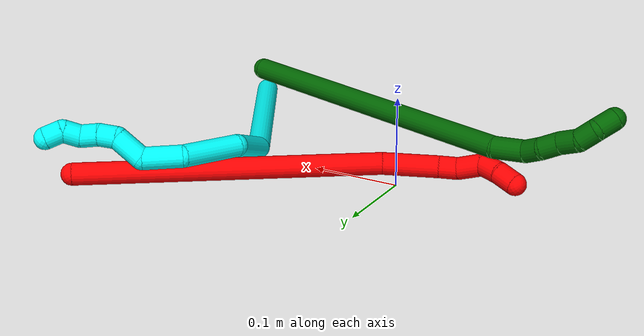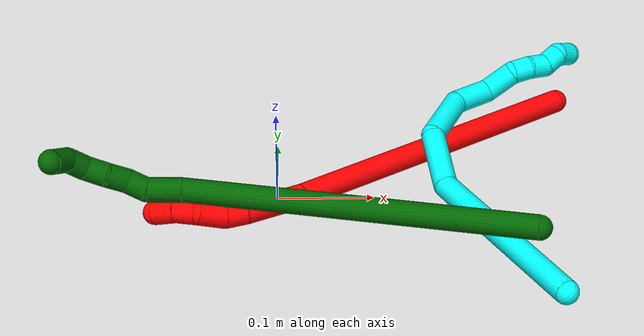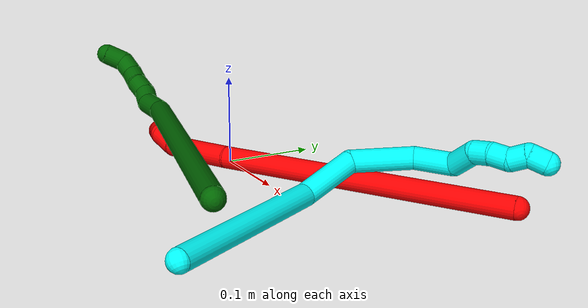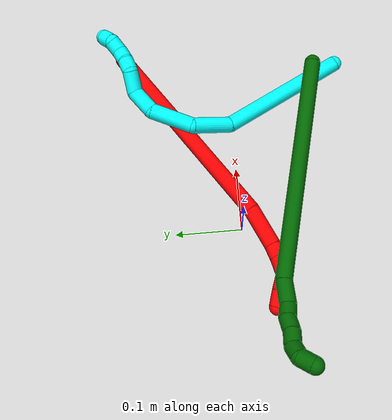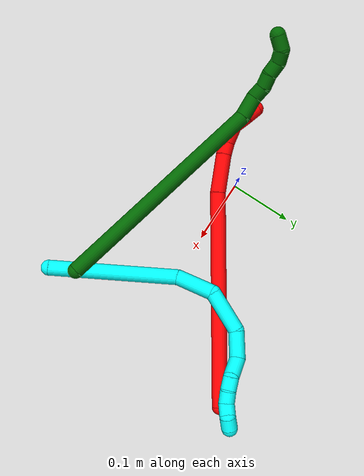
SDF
<sdf version="1.7">
 <world name="default">
  <model name="2">
   <static>0</static>
   <link name="2">
    <collision name="collision-cylinder-e_1_1_4">
     <pose>-0.139965 0.012555 -0.095579 -3.01098 -0.967665 2.89397</pose>
     <geometry><cylinder><radius>0.0125</radius><length>0.339901</length></cylinder></geometry>
     <surface>
      <friction><ode><mu>1.16</mu><mu2>1.16</mu2><slip1>0</slip1><slip2>0</slip2></ode></friction>
      <contact><ode><kp>1e+06</kp><kd>1</kd><max_vel>0</max_vel><min_depth>0.001</min_depth></ode></contact>
     </surface>
    </collision>
    <visual name="visual-cylinder-e_1_1_4">
     <pose>-0.139965 0.012555 -0.095579 -3.01098 -0.967665 2.89397</pose>
     <geometry><cylinder><radius>0.0125</radius><length>0.339901</length></cylinder></geometry>
     <material><ambient>1 0 0 1</ambient></material>
    </visual>
    <collision name="collision-cylinder-e_2_4_5">
     <pose>-0.303663 0.02364 -0.211666 3.07006 -0.856893 -2.98522</pose>
     <geometry><cylinder><radius>0.0125</radius><length>0.062803</length></cylinder></geometry>
     <surface>
      <friction><ode><mu>1.16</mu><mu2>1.16</mu2><slip1>0</slip1><slip2>0</slip2></ode></friction>
      <contact><ode><kp>1e+06</kp><kd>1</kd><max_vel>0</max_vel><min_depth>0.001</min_depth></ode></contact>
     </surface>
    </collision>
    <visual name="visual-cylinder-e_2_4_5">
     <pose>-0.303663 0.02364 -0.211666 3.07006 -0.856893 -2.98522</pose>
     <geometry><cylinder><radius>0.0125</radius><length>0.062803</length></cylinder></geometry>
     <material><ambient>1 0 0 1</ambient></material>
    </visual>
    <collision name="collision-cylinder-e_3_5_6">
     <pose>-0.334648 0.021142 -0.239786 3.00722 -0.756642 -2.80619</pose>
     <geometry><cylinder><radius>0.0125</radius><length>0.021126</length></cylinder></geometry>
     <surface>
      <friction><ode><mu>1.16</mu><mu2>1.16</mu2><slip1>0</slip1><slip2>0</slip2></ode></friction>
      <contact><ode><kp>1e+06</kp><kd>1</kd><max_vel>0</max_vel><min_depth>0.001</min_depth></ode></contact>
     </surface>
    </collision>
    <visual name="visual-cylinder-e_3_5_6">
     <pose>-0.334648 0.021142 -0.239786 3.00722 -0.756642 -2.80619</pose>
     <geometry><cylinder><radius>0.0125</radius><length>0.021126</length></cylinder></geometry>
     <material><ambient>1 0 0 1</ambient></material>
    </visual>
    <collision name="collision-cylinder-e_4_6_7">
     <pose>-0.348607 0.021331 -0.260167 -3.04649 -0.481847 2.75897</pose>
     <geometry><cylinder><radius>0.0125</radius><length>0.02895</length></cylinder></geometry>
     <surface>
      <friction><ode><mu>1.16</mu><mu2>1.16</mu2><slip1>0</slip1><slip2>0</slip2></ode></friction>
      <contact><ode><kp>1e+06</kp><kd>1</kd><max_vel>0</max_vel><min_depth>0.001</min_depth></ode></contact>
     </surface>
    </collision>
    <visual name="visual-cylinder-e_4_6_7">
     <pose>-0.348607 0.021331 -0.260167 -3.04649 -0.481847 2.75897</pose>
     <geometry><cylinder><radius>0.0125</radius><length>0.02895</length></cylinder></geometry>
     <material><ambient>1 0 0 1</ambient></material>
    </visual>
    <collision name="collision-cylinder-e_5_7_8">
     <pose>-0.357573 0.01686 -0.283011 2.62758 -0.192745 -0.704941</pose>
     <geometry><cylinder><radius>0.0125</radius><length>0.023578</length></cylinder></geometry>
     <surface>
      <friction><ode><mu>1.16</mu><mu2>1.16</mu2><slip1>0</slip1><slip2>0</slip2></ode></friction>
      <contact><ode><kp>1e+06</kp><kd>1</kd><max_vel>0</max_vel><min_depth>0.001</min_depth></ode></contact>
     </surface>
    </collision>
    <visual name="visual-cylinder-e_5_7_8">
     <pose>-0.357573 0.01686 -0.283011 2.62758 -0.192745 -0.704941</pose>
     <geometry><cylinder><radius>0.0125</radius><length>0.023578</length></cylinder></geometry>
     <material><ambient>1 0 0 1</ambient></material>
    </visual>
    <collision name="collision-cylinder-e_6_8_2">
     <pose>-0.363283 0.004103 -0.301912 2.46633 -0.296292 -0.803907</pose>
     <geometry><cylinder><radius>0.0125</radius><length>0.023644</length></cylinder></geometry>
     <surface>
      <friction><ode><mu>1.16</mu><mu2>1.16</mu2><slip1>0</slip1><slip2>0</slip2></ode></friction>
      <contact><ode><kp>1e+06</kp><kd>1</kd><max_vel>0</max_vel><min_depth>0.001</min_depth></ode></contact>
     </surface>
    </collision>
    <visual name="visual-cylinder-e_6_8_2">
     <pose>-0.363283 0.004103 -0.301912 2.46633 -0.296292 -0.803907</pose>
     <geometry><cylinder><radius>0.0125</radius><length>0.023644</length></cylinder></geometry>
     <material><ambient>1 0 0 1</ambient></material>
    </visual>
    <collision name="collision-sphere-2">
     <pose>-0.366735 -0.002965 -0.310737 0 -0 0</pose>
     <geometry><sphere><radius>0.0125</radius></sphere></geometry>
     <surface>
      <friction><ode><mu>1.16</mu><mu2>1.16</mu2><slip1>0</slip1><slip2>0</slip2></ode></friction>
      <contact><ode><kp>1e+06</kp><kd>1</kd><max_vel>0</max_vel><min_depth>0.001</min_depth></ode></contact>
     </surface>
    </collision>
    <visual name="visual-sphere-2">
     <pose>-0.366735 -0.002965 -0.310737 0 -0 0</pose>
     <geometry><sphere><radius>0.0125</radius></sphere></geometry>
     <material><ambient>1 0 0 1</ambient></material>
    </visual>
    <collision name="collision-sphere-4">
     <pose>-0.27993 0.02511 -0.191158 0 -0 0</pose>
     <geometry><sphere><radius>0.0125</radius></sphere></geometry>
     <surface>
      <friction><ode><mu>1.16</mu><mu2>1.16</mu2><slip1>0</slip1><slip2>0</slip2></ode></friction>
      <contact><ode><kp>1e+06</kp><kd>1</kd><max_vel>0</max_vel><min_depth>0.001</min_depth></ode></contact>
     </surface>
    </collision>
    <visual name="visual-sphere-4">
     <pose>-0.27993 0.02511 -0.191158 0 -0 0</pose>
     <geometry><sphere><radius>0.0125</radius></sphere></geometry>
     <material><ambient>1 0 0 1</ambient></material>
    </visual>
    <collision name="collision-sphere-1">
     <geometry><sphere><radius>0.0125</radius></sphere></geometry>
     <surface>
      <friction><ode><mu>1.16</mu><mu2>1.16</mu2><slip1>0</slip1><slip2>0</slip2></ode></friction>
      <contact><ode><kp>1e+06</kp><kd>1</kd><max_vel>0</max_vel><min_depth>0.001</min_depth></ode></contact>
     </surface>
    </collision>
    <visual name="visual-sphere-1">
     <geometry><sphere><radius>0.0125</radius></sphere></geometry>
     <material><ambient>1 0 0 1</ambient></material>
    </visual>
    <collision name="collision-sphere-8">
     <pose>-0.359831 0.011171 -0.293086 0 -0 0</pose>
     <geometry><sphere><radius>0.0125</radius></sphere></geometry>
     <surface>
      <friction><ode><mu>1.16</mu><mu2>1.16</mu2><slip1>0</slip1><slip2>0</slip2></ode></friction>
      <contact><ode><kp>1e+06</kp><kd>1</kd><max_vel>0</max_vel><min_depth>0.001</min_depth></ode></contact>
     </surface>
    </collision>
    <visual name="visual-sphere-8">
     <pose>-0.359831 0.011171 -0.293086 0 -0 0</pose>
     <geometry><sphere><radius>0.0125</radius></sphere></geometry>
     <material><ambient>1 0 0 1</ambient></material>
    </visual>
    <collision name="collision-sphere-5">
     <pose>-0.327397 0.022171 -0.232175 0 -0 0</pose>
     <geometry><sphere><radius>0.0125</radius></sphere></geometry>
     <surface>
      <friction><ode><mu>1.16</mu><mu2>1.16</mu2><slip1>0</slip1><slip2>0</slip2></ode></friction>
      <contact><ode><kp>1e+06</kp><kd>1</kd><max_vel>0</max_vel><min_depth>0.001</min_depth></ode></contact>
     </surface>
    </collision>
    <visual name="visual-sphere-5">
     <pose>-0.327397 0.022171 -0.232175 0 -0 0</pose>
     <geometry><sphere><radius>0.0125</radius></sphere></geometry>
     <material><ambient>1 0 0 1</ambient></material>
    </visual>
    <collision name="collision-sphere-6">
     <pose>-0.341899 0.020113 -0.247398 0 -0 0</pose>
     <geometry><sphere><radius>0.0125</radius></sphere></geometry>
     <surface>
      <friction><ode><mu>1.16</mu><mu2>1.16</mu2><slip1>0</slip1><slip2>0</slip2></ode></friction>
      <contact><ode><kp>1e+06</kp><kd>1</kd><max_vel>0</max_vel><min_depth>0.001</min_depth></ode></contact>
     </surface>
    </collision>
    <visual name="visual-sphere-6">
     <pose>-0.341899 0.020113 -0.247398 0 -0 0</pose>
     <geometry><sphere><radius>0.0125</radius></sphere></geometry>
     <material><ambient>1 0 0 1</ambient></material>
    </visual>
    <collision name="collision-sphere-7">
     <pose>-0.355315 0.022549 -0.272936 0 -0 0</pose>
     <geometry><sphere><radius>0.0125</radius></sphere></geometry>
     <surface>
      <friction><ode><mu>1.16</mu><mu2>1.16</mu2><slip1>0</slip1><slip2>0</slip2></ode></friction>
      <contact><ode><kp>1e+06</kp><kd>1</kd><max_vel>0</max_vel><min_depth>0.001</min_depth></ode></contact>
     </surface>
    </collision>
    <visual name="visual-sphere-7">
     <pose>-0.355315 0.022549 -0.272936 0 -0 0</pose>
     <geometry><sphere><radius>0.0125</radius></sphere></geometry>
     <material><ambient>1 0 0 1</ambient></material>
    </visual>
    <inertial>
     <pose>-0.201654 0.014621 -0.144378 0 -0 0</pose>
     <mass>0.5</mass>
     <inertia>
      <ixx>-0.001399</ixx>
      <ixy>0</ixy>
      <ixz>0</ixz>
      <iyy>0.003722</iyy>
      <iyz>0</iyz>
      <izz>0.002463</izz>
     </inertia>
    </inertial>
   </link>
   <pose>0.309583 0.170618 0.0115 2.0459 -0.362821 1.06852</pose>
  </model>
  <model name="3">
   <static>0</static>
   <link name="3">
    <collision name="collision-cylinder-e_1_1_4">
     <pose>0.016314 0.098937 -0.026025 -1.82802 0.158133 -0.204818</pose>
     <geometry><cylinder><radius>0.0125</radius><length>0.20719</length></cylinder></geometry>
     <surface>
      <friction><ode><mu>1.16</mu><mu2>1.16</mu2><slip1>0</slip1><slip2>0</slip2></ode></friction>
      <contact><ode><kp>1e+06</kp><kd>1</kd><max_vel>0</max_vel><min_depth>0.001</min_depth></ode></contact>
     </surface>
    </collision>
    <visual name="visual-cylinder-e_1_1_4">
     <pose>0.016314 0.098937 -0.026025 -1.82802 0.158133 -0.204818</pose>
     <geometry><cylinder><radius>0.0125</radius><length>0.20719</length></cylinder></geometry>
     <material><ambient>0.003922 1 0.996078 1</ambient></material>
    </visual>
    <collision name="collision-cylinder-e_2_4_5">
     <pose>0.021778 0.22656 -0.063094 -1.93828 -0.339312 0.489026</pose>
     <geometry><cylinder><radius>0.0125</radius><length>0.065194</length></cylinder></geometry>
     <surface>
      <friction><ode><mu>1.16</mu><mu2>1.16</mu2><slip1>0</slip1><slip2>0</slip2></ode></friction>
      <contact><ode><kp>1e+06</kp><kd>1</kd><max_vel>0</max_vel><min_depth>0.001</min_depth></ode></contact>
     </surface>
    </collision>
    <visual name="visual-cylinder-e_2_4_5">
     <pose>0.021778 0.22656 -0.063094 -1.93828 -0.339312 0.489026</pose>
     <geometry><cylinder><radius>0.0125</radius><length>0.065194</length></cylinder></geometry>
     <material><ambient>0.003922 1 0.996078 1</ambient></material>
    </visual>
    <collision name="collision-cylinder-e_3_5_6">
     <pose>-0.008244 0.281788 -0.064609 -1.22616 -0.597076 0.426411</pose>
     <geometry><cylinder><radius>0.0125</radius><length>0.068202</length></cylinder></geometry>
     <surface>
      <friction><ode><mu>1.16</mu><mu2>1.16</mu2><slip1>0</slip1><slip2>0</slip2></ode></friction>
      <contact><ode><kp>1e+06</kp><kd>1</kd><max_vel>0</max_vel><min_depth>0.001</min_depth></ode></contact>
     </surface>
    </collision>
    <visual name="visual-cylinder-e_3_5_6">
     <pose>-0.008244 0.281788 -0.064609 -1.22616 -0.597076 0.426411</pose>
     <geometry><cylinder><radius>0.0125</radius><length>0.068202</length></cylinder></geometry>
     <material><ambient>0.003922 1 0.996078 1</ambient></material>
    </visual>
    <collision name="collision-cylinder-e_4_6_7">
     <pose>-0.043726 0.31682 -0.042912 -0.609097 -0.832596 0.276184</pose>
     <geometry><cylinder><radius>0.0125</radius><length>0.044098</length></cylinder></geometry>
     <surface>
      <friction><ode><mu>1.16</mu><mu2>1.16</mu2><slip1>0</slip1><slip2>0</slip2></ode></friction>
      <contact><ode><kp>1e+06</kp><kd>1</kd><max_vel>0</max_vel><min_depth>0.001</min_depth></ode></contact>
     </surface>
    </collision>
    <visual name="visual-cylinder-e_4_6_7">
     <pose>-0.043726 0.31682 -0.042912 -0.609097 -0.832596 0.276184</pose>
     <geometry><cylinder><radius>0.0125</radius><length>0.044098</length></cylinder></geometry>
     <material><ambient>0.003922 1 0.996078 1</ambient></material>
    </visual>
    <collision name="collision-cylinder-e_5_7_8">
     <pose>-0.077155 0.323424 -0.030021 1.20542 -1.45346 -1.09806</pose>
     <geometry><cylinder><radius>0.0125</radius><length>0.034477</length></cylinder></geometry>
     <surface>
      <friction><ode><mu>1.16</mu><mu2>1.16</mu2><slip1>0</slip1><slip2>0</slip2></ode></friction>
      <contact><ode><kp>1e+06</kp><kd>1</kd><max_vel>0</max_vel><min_depth>0.001</min_depth></ode></contact>
     </surface>
    </collision>
    <visual name="visual-cylinder-e_5_7_8">
     <pose>-0.077155 0.323424 -0.030021 1.20542 -1.45346 -1.09806</pose>
     <geometry><cylinder><radius>0.0125</radius><length>0.034477</length></cylinder></geometry>
     <material><ambient>0.003922 1 0.996078 1</ambient></material>
    </visual>
    <collision name="collision-cylinder-e_6_8_9">
     <pose>-0.103013 0.322666 -0.024137 -0.214713 -1.02688 0.121391</pose>
     <geometry><cylinder><radius>0.0125</radius><length>0.020424</length></cylinder></geometry>
     <surface>
      <friction><ode><mu>1.16</mu><mu2>1.16</mu2><slip1>0</slip1><slip2>0</slip2></ode></friction>
      <contact><ode><kp>1e+06</kp><kd>1</kd><max_vel>0</max_vel><min_depth>0.001</min_depth></ode></contact>
     </surface>
    </collision>
    <visual name="visual-cylinder-e_6_8_9">
     <pose>-0.103013 0.322666 -0.024137 -0.214713 -1.02688 0.121391</pose>
     <geometry><cylinder><radius>0.0125</radius><length>0.020424</length></cylinder></geometry>
     <material><ambient>0.003922 1 0.996078 1</ambient></material>
    </visual>
    <collision name="collision-cylinder-e_7_9_10">
     <pose>-0.118953 0.326115 -0.012167 -0.328924 -0.786021 0.137391</pose>
     <geometry><cylinder><radius>0.0125</radius><length>0.020357</length></cylinder></geometry>
     <surface>
      <friction><ode><mu>1.16</mu><mu2>1.16</mu2><slip1>0</slip1><slip2>0</slip2></ode></friction>
      <contact><ode><kp>1e+06</kp><kd>1</kd><max_vel>0</max_vel><min_depth>0.001</min_depth></ode></contact>
     </surface>
    </collision>
    <visual name="visual-cylinder-e_7_9_10">
     <pose>-0.118953 0.326115 -0.012167 -0.328924 -0.786021 0.137391</pose>
     <geometry><cylinder><radius>0.0125</radius><length>0.020357</length></cylinder></geometry>
     <material><ambient>0.003922 1 0.996078 1</ambient></material>
    </visual>
    <collision name="collision-cylinder-e_8_10_11">
     <pose>-0.135287 0.331978 -0.003295 -1.04292 -1.14904 0.71212</pose>
     <geometry><cylinder><radius>0.0125</radius><length>0.020018</length></cylinder></geometry>
     <surface>
      <friction><ode><mu>1.16</mu><mu2>1.16</mu2><slip1>0</slip1><slip2>0</slip2></ode></friction>
      <contact><ode><kp>1e+06</kp><kd>1</kd><max_vel>0</max_vel><min_depth>0.001</min_depth></ode></contact>
     </surface>
    </collision>
    <visual name="visual-cylinder-e_8_10_11">
     <pose>-0.135287 0.331978 -0.003295 -1.04292 -1.14904 0.71212</pose>
     <geometry><cylinder><radius>0.0125</radius><length>0.020018</length></cylinder></geometry>
     <material><ambient>0.003922 1 0.996078 1</ambient></material>
    </visual>
    <collision name="collision-cylinder-e_9_11_2">
     <pose>-0.149073 0.340578 0.006058 -0.60679 -0.483068 0.153936</pose>
     <geometry><cylinder><radius>0.0125</radius><length>0.020041</length></cylinder></geometry>
     <surface>
      <friction><ode><mu>1.16</mu><mu2>1.16</mu2><slip1>0</slip1><slip2>0</slip2></ode></friction>
      <contact><ode><kp>1e+06</kp><kd>1</kd><max_vel>0</max_vel><min_depth>0.001</min_depth></ode></contact>
     </surface>
    </collision>
    <visual name="visual-cylinder-e_9_11_2">
     <pose>-0.149073 0.340578 0.006058 -0.60679 -0.483068 0.153936</pose>
     <geometry><cylinder><radius>0.0125</radius><length>0.020041</length></cylinder></geometry>
     <material><ambient>0.003922 1 0.996078 1</ambient></material>
    </visual>
    <collision name="collision-sphere-2">
     <pose>-0.153728 0.345638 0.013348 0 -0 0</pose>
     <geometry><sphere><radius>0.0125</radius></sphere></geometry>
     <surface>
      <friction><ode><mu>1.16</mu><mu2>1.16</mu2><slip1>0</slip1><slip2>0</slip2></ode></friction>
      <contact><ode><kp>1e+06</kp><kd>1</kd><max_vel>0</max_vel><min_depth>0.001</min_depth></ode></contact>
     </surface>
    </collision>
    <visual name="visual-sphere-2">
     <pose>-0.153728 0.345638 0.013348 0 -0 0</pose>
     <geometry><sphere><radius>0.0125</radius></sphere></geometry>
     <material><ambient>0.003922 1 0.996078 1</ambient></material>
    </visual>
    <collision name="collision-sphere-11">
     <pose>-0.144419 0.335518 -0.001232 0 -0 0</pose>
     <geometry><sphere><radius>0.0125</radius></sphere></geometry>
     <surface>
      <friction><ode><mu>1.16</mu><mu2>1.16</mu2><slip1>0</slip1><slip2>0</slip2></ode></friction>
      <contact><ode><kp>1e+06</kp><kd>1</kd><max_vel>0</max_vel><min_depth>0.001</min_depth></ode></contact>
     </surface>
    </collision>
    <visual name="visual-sphere-11">
     <pose>-0.144419 0.335518 -0.001232 0 -0 0</pose>
     <geometry><sphere><radius>0.0125</radius></sphere></geometry>
     <material><ambient>0.003922 1 0.996078 1</ambient></material>
    </visual>
    <collision name="collision-sphere-10">
     <pose>-0.126155 0.328438 -0.005359 0 -0 0</pose>
     <geometry><sphere><radius>0.0125</radius></sphere></geometry>
     <surface>
      <friction><ode><mu>1.16</mu><mu2>1.16</mu2><slip1>0</slip1><slip2>0</slip2></ode></friction>
      <contact><ode><kp>1e+06</kp><kd>1</kd><max_vel>0</max_vel><min_depth>0.001</min_depth></ode></contact>
     </surface>
    </collision>
    <visual name="visual-sphere-10">
     <pose>-0.126155 0.328438 -0.005359 0 -0 0</pose>
     <geometry><sphere><radius>0.0125</radius></sphere></geometry>
     <material><ambient>0.003922 1 0.996078 1</ambient></material>
    </visual>
    <collision name="collision-sphere-9">
     <pose>-0.111751 0.323792 -0.018974 0 -0 0</pose>
     <geometry><sphere><radius>0.0125</radius></sphere></geometry>
     <surface>
      <friction><ode><mu>1.16</mu><mu2>1.16</mu2><slip1>0</slip1><slip2>0</slip2></ode></friction>
      <contact><ode><kp>1e+06</kp><kd>1</kd><max_vel>0</max_vel><min_depth>0.001</min_depth></ode></contact>
     </surface>
    </collision>
    <visual name="visual-sphere-9">
     <pose>-0.111751 0.323792 -0.018974 0 -0 0</pose>
     <geometry><sphere><radius>0.0125</radius></sphere></geometry>
     <material><ambient>0.003922 1 0.996078 1</ambient></material>
    </visual>
    <collision name="collision-sphere-4">
     <pose>0.032627 0.197873 -0.05205 0 -0 0</pose>
     <geometry><sphere><radius>0.0125</radius></sphere></geometry>
     <surface>
      <friction><ode><mu>1.16</mu><mu2>1.16</mu2><slip1>0</slip1><slip2>0</slip2></ode></friction>
      <contact><ode><kp>1e+06</kp><kd>1</kd><max_vel>0</max_vel><min_depth>0.001</min_depth></ode></contact>
     </surface>
    </collision>
    <visual name="visual-sphere-4">
     <pose>0.032627 0.197873 -0.05205 0 -0 0</pose>
     <geometry><sphere><radius>0.0125</radius></sphere></geometry>
     <material><ambient>0.003922 1 0.996078 1</ambient></material>
    </visual>
    <collision name="collision-sphere-1">
     <geometry><sphere><radius>0.0125</radius></sphere></geometry>
     <surface>
      <friction><ode><mu>1.16</mu><mu2>1.16</mu2><slip1>0</slip1><slip2>0</slip2></ode></friction>
      <contact><ode><kp>1e+06</kp><kd>1</kd><max_vel>0</max_vel><min_depth>0.001</min_depth></ode></contact>
     </surface>
    </collision>
    <visual name="visual-sphere-1">
     <geometry><sphere><radius>0.0125</radius></sphere></geometry>
     <material><ambient>0.003922 1 0.996078 1</ambient></material>
    </visual>
    <collision name="collision-sphere-8">
     <pose>-0.094275 0.32154 -0.0293 0 -0 0</pose>
     <geometry><sphere><radius>0.0125</radius></sphere></geometry>
     <surface>
      <friction><ode><mu>1.16</mu><mu2>1.16</mu2><slip1>0</slip1><slip2>0</slip2></ode></friction>
      <contact><ode><kp>1e+06</kp><kd>1</kd><max_vel>0</max_vel><min_depth>0.001</min_depth></ode></contact>
     </surface>
    </collision>
    <visual name="visual-sphere-8">
     <pose>-0.094275 0.32154 -0.0293 0 -0 0</pose>
     <geometry><sphere><radius>0.0125</radius></sphere></geometry>
     <material><ambient>0.003922 1 0.996078 1</ambient></material>
    </visual>
    <collision name="collision-sphere-5">
     <pose>0.010928 0.255246 -0.074137 0 -0 0</pose>
     <geometry><sphere><radius>0.0125</radius></sphere></geometry>
     <surface>
      <friction><ode><mu>1.16</mu><mu2>1.16</mu2><slip1>0</slip1><slip2>0</slip2></ode></friction>
      <contact><ode><kp>1e+06</kp><kd>1</kd><max_vel>0</max_vel><min_depth>0.001</min_depth></ode></contact>
     </surface>
    </collision>
    <visual name="visual-sphere-5">
     <pose>0.010928 0.255246 -0.074137 0 -0 0</pose>
     <geometry><sphere><radius>0.0125</radius></sphere></geometry>
     <material><ambient>0.003922 1 0.996078 1</ambient></material>
    </visual>
    <collision name="collision-sphere-6">
     <pose>-0.027417 0.308331 -0.055081 0 -0 0</pose>
     <geometry><sphere><radius>0.0125</radius></sphere></geometry>
     <surface>
      <friction><ode><mu>1.16</mu><mu2>1.16</mu2><slip1>0</slip1><slip2>0</slip2></ode></friction>
      <contact><ode><kp>1e+06</kp><kd>1</kd><max_vel>0</max_vel><min_depth>0.001</min_depth></ode></contact>
     </surface>
    </collision>
    <visual name="visual-sphere-6">
     <pose>-0.027417 0.308331 -0.055081 0 -0 0</pose>
     <geometry><sphere><radius>0.0125</radius></sphere></geometry>
     <material><ambient>0.003922 1 0.996078 1</ambient></material>
    </visual>
    <collision name="collision-sphere-7">
     <pose>-0.060035 0.325309 -0.030742 0 -0 0</pose>
     <geometry><sphere><radius>0.0125</radius></sphere></geometry>
     <surface>
      <friction><ode><mu>1.16</mu><mu2>1.16</mu2><slip1>0</slip1><slip2>0</slip2></ode></friction>
      <contact><ode><kp>1e+06</kp><kd>1</kd><max_vel>0</max_vel><min_depth>0.001</min_depth></ode></contact>
     </surface>
    </collision>
    <visual name="visual-sphere-7">
     <pose>-0.060035 0.325309 -0.030742 0 -0 0</pose>
     <geometry><sphere><radius>0.0125</radius></sphere></geometry>
     <material><ambient>0.003922 1 0.996078 1</ambient></material>
    </visual>
    <inertial>
     <pose>-0.021144 0.212618 -0.035049 0 -0 0</pose>
     <mass>0.5</mass>
     <inertia>
      <ixx>0.000638</ixx>
      <ixy>0</ixy>
      <ixz>0</ixz>
      <iyy>-0.000234</iyy>
      <iyz>0</iyz>
      <izz>-0.000842</izz>
     </inertia>
    </inertial>
   </link>
   <pose>0.274023 -0.178251 0.012158 -3.00633 0.656345 -2.83799</pose>
  </model>
  <model name="6">
   <static>0</static>
   <link name="6">
    <collision name="collision-cylinder-e_1_1_4">
     <pose>0.001748 0.002344 -0.177163 -3.12836 0.009866 -1.28148</pose>
     <geometry><cylinder><radius>0.0125</radius><length>0.354374</length></cylinder></geometry>
     <surface>
      <friction><ode><mu>1.16</mu><mu2>1.16</mu2><slip1>0</slip1><slip2>0</slip2></ode></friction>
      <contact><ode><kp>1e+06</kp><kd>1</kd><max_vel>0</max_vel><min_depth>0.001</min_depth></ode></contact>
     </surface>
    </collision>
    <visual name="visual-cylinder-e_1_1_4">
     <pose>0.001748 0.002344 -0.177163 -3.12836 0.009866 -1.28148</pose>
     <geometry><cylinder><radius>0.0125</radius><length>0.354374</length></cylinder></geometry>
     <material><ambient>0 0.392157 0.003922 1</ambient></material>
    </visual>
    <collision name="collision-cylinder-e_2_4_5">
     <pose>0.004906 0.010014 -0.371443 -2.83995 0.078464 -0.505515</pose>
     <geometry><cylinder><radius>0.0125</radius><length>0.035965</length></cylinder></geometry>
     <surface>
      <friction><ode><mu>1.16</mu><mu2>1.16</mu2><slip1>0</slip1><slip2>0</slip2></ode></friction>
      <contact><ode><kp>1e+06</kp><kd>1</kd><max_vel>0</max_vel><min_depth>0.001</min_depth></ode></contact>
     </surface>
    </collision>
    <visual name="visual-cylinder-e_2_4_5">
     <pose>0.004906 0.010014 -0.371443 -2.83995 0.078464 -0.505515</pose>
     <geometry><cylinder><radius>0.0125</radius><length>0.035965</length></cylinder></geometry>
     <material><ambient>0 0.392157 0.003922 1</ambient></material>
    </visual>
    <collision name="collision-cylinder-e_3_5_6">
     <pose>0.010806 0.015847 -0.398156 -3.08885 0.437152 -2.90519</pose>
     <geometry><cylinder><radius>0.0125</radius><length>0.021212</length></cylinder></geometry>
     <surface>
      <friction><ode><mu>1.16</mu><mu2>1.16</mu2><slip1>0</slip1><slip2>0</slip2></ode></friction>
      <contact><ode><kp>1e+06</kp><kd>1</kd><max_vel>0</max_vel><min_depth>0.001</min_depth></ode></contact>
     </surface>
    </collision>
    <visual name="visual-cylinder-e_3_5_6">
     <pose>0.010806 0.015847 -0.398156 -3.08885 0.437152 -2.90519</pose>
     <geometry><cylinder><radius>0.0125</radius><length>0.021212</length></cylinder></geometry>
     <material><ambient>0 0.392157 0.003922 1</ambient></material>
    </visual>
    <collision name="collision-cylinder-e_4_6_7">
     <pose>0.020091 0.020237 -0.416641 -2.72968 0.459028 -1.68237</pose>
     <geometry><cylinder><radius>0.0125</radius><length>0.021643</length></cylinder></geometry>
     <surface>
      <friction><ode><mu>1.16</mu><mu2>1.16</mu2><slip1>0</slip1><slip2>0</slip2></ode></friction>
      <contact><ode><kp>1e+06</kp><kd>1</kd><max_vel>0</max_vel><min_depth>0.001</min_depth></ode></contact>
     </surface>
    </collision>
    <visual name="visual-cylinder-e_4_6_7">
     <pose>0.020091 0.020237 -0.416641 -2.72968 0.459028 -1.68237</pose>
     <geometry><cylinder><radius>0.0125</radius><length>0.021643</length></cylinder></geometry>
     <material><ambient>0 0.392157 0.003922 1</ambient></material>
    </visual>
    <collision name="collision-cylinder-e_5_7_8">
     <pose>0.028962 0.025886 -0.435746 -2.97051 0.37471 -2.29202</pose>
     <geometry><cylinder><radius>0.0125</radius><length>0.022278</length></cylinder></geometry>
     <surface>
      <friction><ode><mu>1.16</mu><mu2>1.16</mu2><slip1>0</slip1><slip2>0</slip2></ode></friction>
      <contact><ode><kp>1e+06</kp><kd>1</kd><max_vel>0</max_vel><min_depth>0.001</min_depth></ode></contact>
     </surface>
    </collision>
    <visual name="visual-cylinder-e_5_7_8">
     <pose>0.028962 0.025886 -0.435746 -2.97051 0.37471 -2.29202</pose>
     <geometry><cylinder><radius>0.0125</radius><length>0.022278</length></cylinder></geometry>
     <material><ambient>0 0.392157 0.003922 1</ambient></material>
    </visual>
    <collision name="collision-cylinder-e_6_8_9">
     <pose>0.039706 0.032267 -0.452726 -2.54286 0.683205 -1.71178</pose>
     <geometry><cylinder><radius>0.0125</radius><length>0.021121</length></cylinder></geometry>
     <surface>
      <friction><ode><mu>1.16</mu><mu2>1.16</mu2><slip1>0</slip1><slip2>0</slip2></ode></friction>
      <contact><ode><kp>1e+06</kp><kd>1</kd><max_vel>0</max_vel><min_depth>0.001</min_depth></ode></contact>
     </surface>
    </collision>
    <visual name="visual-cylinder-e_6_8_9">
     <pose>0.039706 0.032267 -0.452726 -2.54286 0.683205 -1.71178</pose>
     <geometry><cylinder><radius>0.0125</radius><length>0.021121</length></cylinder></geometry>
     <material><ambient>0 0.392157 0.003922 1</ambient></material>
    </visual>
    <collision name="collision-cylinder-e_7_9_2">
     <pose>0.050865 0.046947 -0.463431 -1.94384 0.393924 -0.568913</pose>
     <geometry><cylinder><radius>0.0125</radius><length>0.023407</length></cylinder></geometry>
     <surface>
      <friction><ode><mu>1.16</mu><mu2>1.16</mu2><slip1>0</slip1><slip2>0</slip2></ode></friction>
      <contact><ode><kp>1e+06</kp><kd>1</kd><max_vel>0</max_vel><min_depth>0.001</min_depth></ode></contact>
     </surface>
    </collision>
    <visual name="visual-cylinder-e_7_9_2">
     <pose>0.050865 0.046947 -0.463431 -1.94384 0.393924 -0.568913</pose>
     <geometry><cylinder><radius>0.0125</radius><length>0.023407</length></cylinder></geometry>
     <material><ambient>0 0.392157 0.003922 1</ambient></material>
    </visual>
    <collision name="collision-sphere-2">
     <pose>0.055357 0.057011 -0.467369 0 -0 0</pose>
     <geometry><sphere><radius>0.0125</radius></sphere></geometry>
     <surface>
      <friction><ode><mu>1.16</mu><mu2>1.16</mu2><slip1>0</slip1><slip2>0</slip2></ode></friction>
      <contact><ode><kp>1e+06</kp><kd>1</kd><max_vel>0</max_vel><min_depth>0.001</min_depth></ode></contact>
     </surface>
    </collision>
    <visual name="visual-sphere-2">
     <pose>0.055357 0.057011 -0.467369 0 -0 0</pose>
     <geometry><sphere><radius>0.0125</radius></sphere></geometry>
     <material><ambient>0 0.392157 0.003922 1</ambient></material>
    </visual>
    <collision name="collision-sphere-9">
     <pose>0.046373 0.036883 -0.459492 0 -0 0</pose>
     <geometry><sphere><radius>0.0125</radius></sphere></geometry>
     <surface>
      <friction><ode><mu>1.16</mu><mu2>1.16</mu2><slip1>0</slip1><slip2>0</slip2></ode></friction>
      <contact><ode><kp>1e+06</kp><kd>1</kd><max_vel>0</max_vel><min_depth>0.001</min_depth></ode></contact>
     </surface>
    </collision>
    <visual name="visual-sphere-9">
     <pose>0.046373 0.036883 -0.459492 0 -0 0</pose>
     <geometry><sphere><radius>0.0125</radius></sphere></geometry>
     <material><ambient>0 0.392157 0.003922 1</ambient></material>
    </visual>
    <collision name="collision-sphere-4">
     <pose>0.003496 0.004688 -0.354325 0 -0 0</pose>
     <geometry><sphere><radius>0.0125</radius></sphere></geometry>
     <surface>
      <friction><ode><mu>1.16</mu><mu2>1.16</mu2><slip1>0</slip1><slip2>0</slip2></ode></friction>
      <contact><ode><kp>1e+06</kp><kd>1</kd><max_vel>0</max_vel><min_depth>0.001</min_depth></ode></contact>
     </surface>
    </collision>
    <visual name="visual-sphere-4">
     <pose>0.003496 0.004688 -0.354325 0 -0 0</pose>
     <geometry><sphere><radius>0.0125</radius></sphere></geometry>
     <material><ambient>0 0.392157 0.003922 1</ambient></material>
    </visual>
    <collision name="collision-sphere-1">
     <geometry><sphere><radius>0.0125</radius></sphere></geometry>
     <surface>
      <friction><ode><mu>1.16</mu><mu2>1.16</mu2><slip1>0</slip1><slip2>0</slip2></ode></friction>
      <contact><ode><kp>1e+06</kp><kd>1</kd><max_vel>0</max_vel><min_depth>0.001</min_depth></ode></contact>
     </surface>
    </collision>
    <visual name="visual-sphere-1">
     <geometry><sphere><radius>0.0125</radius></sphere></geometry>
     <material><ambient>0 0.392157 0.003922 1</ambient></material>
    </visual>
    <collision name="collision-sphere-8">
     <pose>0.033039 0.027651 -0.445961 0 -0 0</pose>
     <geometry><sphere><radius>0.0125</radius></sphere></geometry>
     <surface>
      <friction><ode><mu>1.16</mu><mu2>1.16</mu2><slip1>0</slip1><slip2>0</slip2></ode></friction>
      <contact><ode><kp>1e+06</kp><kd>1</kd><max_vel>0</max_vel><min_depth>0.001</min_depth></ode></contact>
     </surface>
    </collision>
    <visual name="visual-sphere-8">
     <pose>0.033039 0.027651 -0.445961 0 -0 0</pose>
     <geometry><sphere><radius>0.0125</radius></sphere></geometry>
     <material><ambient>0 0.392157 0.003922 1</ambient></material>
    </visual>
    <collision name="collision-sphere-5">
     <pose>0.006315 0.01534 -0.388561 0 -0 0</pose>
     <geometry><sphere><radius>0.0125</radius></sphere></geometry>
     <surface>
      <friction><ode><mu>1.16</mu><mu2>1.16</mu2><slip1>0</slip1><slip2>0</slip2></ode></friction>
      <contact><ode><kp>1e+06</kp><kd>1</kd><max_vel>0</max_vel><min_depth>0.001</min_depth></ode></contact>
     </surface>
    </collision>
    <visual name="visual-sphere-5">
     <pose>0.006315 0.01534 -0.388561 0 -0 0</pose>
     <geometry><sphere><radius>0.0125</radius></sphere></geometry>
     <material><ambient>0 0.392157 0.003922 1</ambient></material>
    </visual>
    <collision name="collision-sphere-6">
     <pose>0.015296 0.016353 -0.407751 0 -0 0</pose>
     <geometry><sphere><radius>0.0125</radius></sphere></geometry>
     <surface>
      <friction><ode><mu>1.16</mu><mu2>1.16</mu2><slip1>0</slip1><slip2>0</slip2></ode></friction>
      <contact><ode><kp>1e+06</kp><kd>1</kd><max_vel>0</max_vel><min_depth>0.001</min_depth></ode></contact>
     </surface>
    </collision>
    <visual name="visual-sphere-6">
     <pose>0.015296 0.016353 -0.407751 0 -0 0</pose>
     <geometry><sphere><radius>0.0125</radius></sphere></geometry>
     <material><ambient>0 0.392157 0.003922 1</ambient></material>
    </visual>
    <collision name="collision-sphere-7">
     <pose>0.024885 0.024121 -0.425531 0 -0 0</pose>
     <geometry><sphere><radius>0.0125</radius></sphere></geometry>
     <surface>
      <friction><ode><mu>1.16</mu><mu2>1.16</mu2><slip1>0</slip1><slip2>0</slip2></ode></friction>
      <contact><ode><kp>1e+06</kp><kd>1</kd><max_vel>0</max_vel><min_depth>0.001</min_depth></ode></contact>
     </surface>
    </collision>
    <visual name="visual-sphere-7">
     <pose>0.024885 0.024121 -0.425531 0 -0 0</pose>
     <geometry><sphere><radius>0.0125</radius></sphere></geometry>
     <material><ambient>0 0.392157 0.003922 1</ambient></material>
    </visual>
    <inertial>
     <pose>0.008269 0.008644 -0.247442 0 -0 0</pose>
     <mass>0.5</mass>
     <inertia>
      <ixx>-0.002506</ixx>
      <ixy>0</ixy>
      <ixz>0</ixz>
      <iyy>-0.004633</iyy>
      <iyz>0</iyz>
      <izz>-0.000132</izz>
     </inertia>
    </inertial>
   </link>
   <pose>0.251408 -0.1341 0.055458 0.324566 -1.53032 2.56093</pose>
  </model>
 </world>
</sdf>
